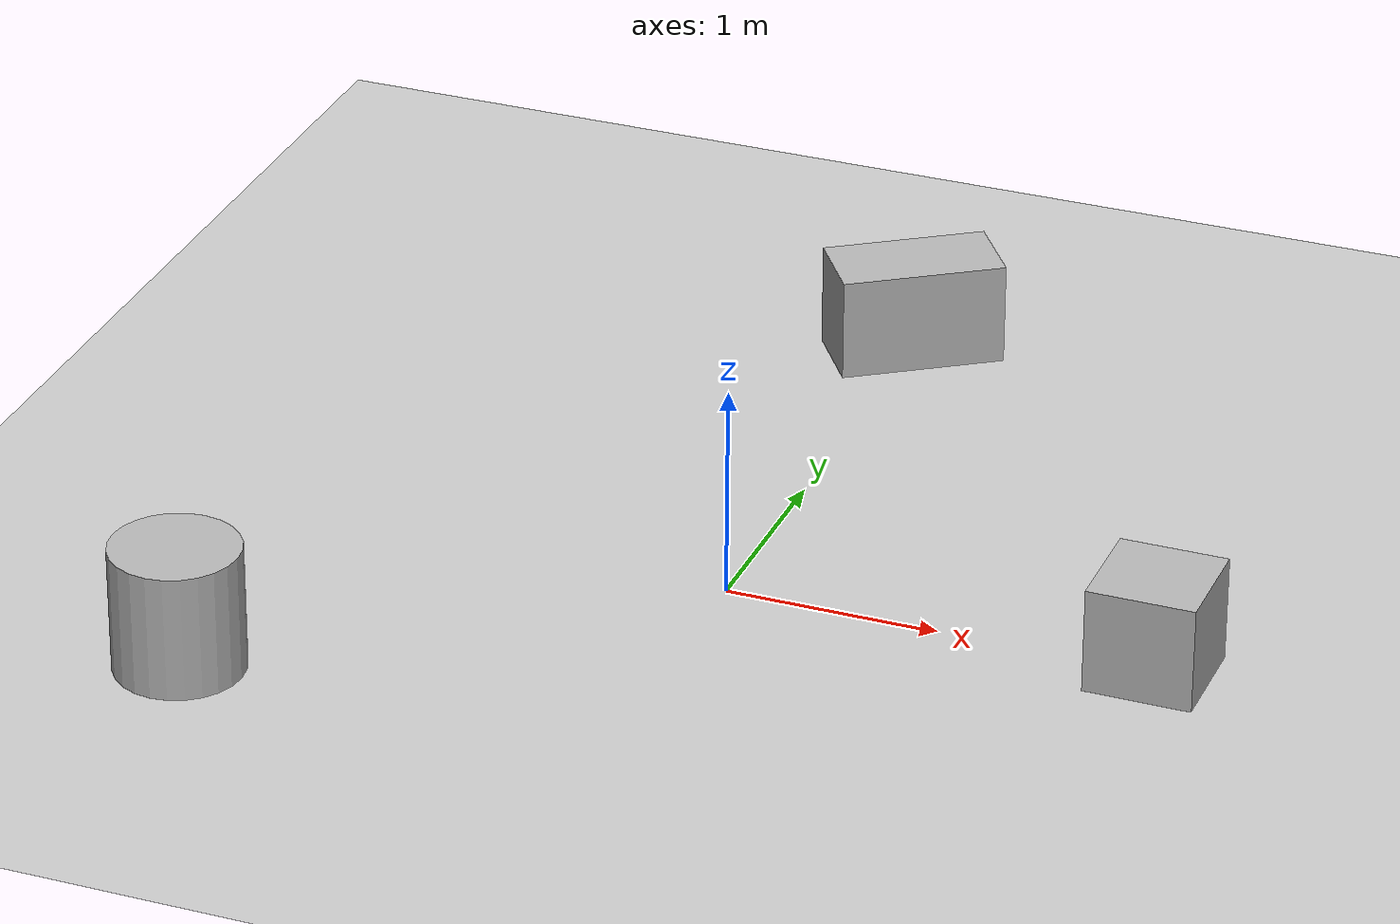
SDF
<?xml version="1.0"?>
<sdf version="1.6">
  <world name="simple">
    <include><uri>model://ground_plane</uri></include>
    <include><uri>model://sun</uri></include>

    <!-- a few boxes so the lidar has something to see and teleop has something to avoid -->
    <model name="box_1">
      <static>true</static>
      <pose>2 0 0.25 0 0 0</pose>
      <link name="link">
        <collision name="col"><geometry><box><size>0.5 0.5 0.5</size></box></geometry></collision>
        <visual name="vis"><geometry><box><size>0.5 0.5 0.5</size></box></geometry></visual>
      </link>
    </model>

    <model name="box_2">
      <static>true</static>
      <pose>0 2.5 0.25 0 0 0.6</pose>
      <link name="link">
        <collision name="col"><geometry><box><size>0.8 0.4 0.5</size></box></geometry></collision>
        <visual name="vis"><geometry><box><size>0.8 0.4 0.5</size></box></geometry></visual>
      </link>
    </model>

    <model name="cylinder_1">
      <static>true</static>
      <pose>-2 -1.5 0.3 0 0 0</pose>
      <link name="link">
        <collision name="col"><geometry><cylinder><radius>0.3</radius><length>0.6</length></cylinder></geometry></collision>
        <visual name="vis"><geometry><cylinder><radius>0.3</radius><length>0.6</length></cylinder></geometry></visual>
      </link>
    </model>
  </world>
</sdf>
